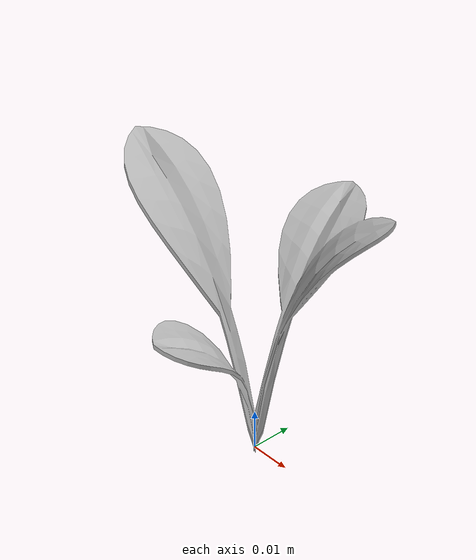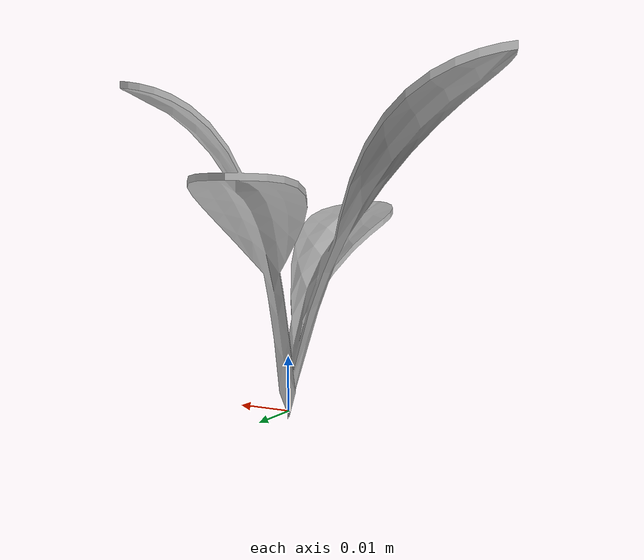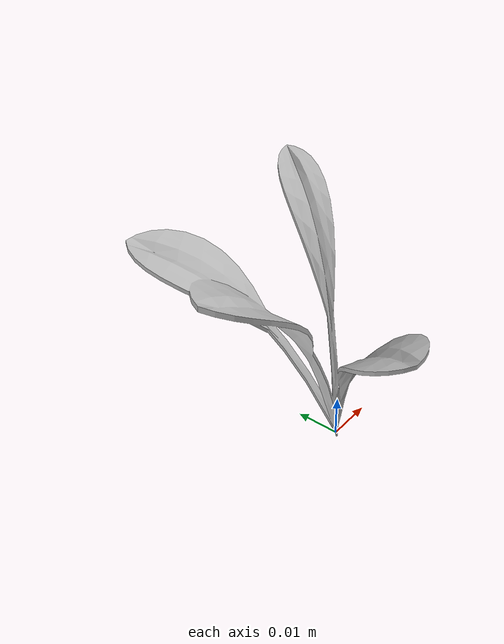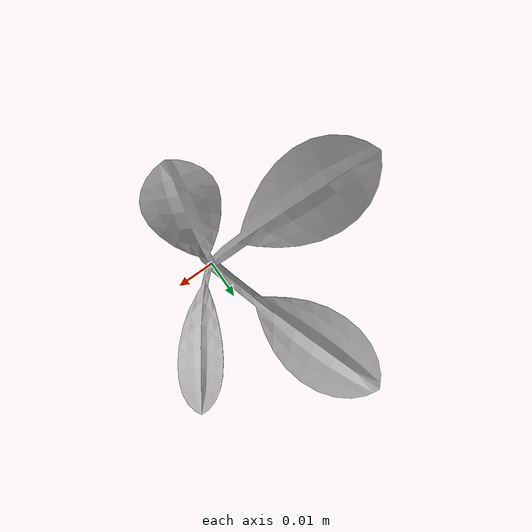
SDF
<sdf version="1.6">
  <model name="sugar_beet_43">
    <static>true</static>
    <link name="body">
      <visual name="visual">
        <geometry>
          <mesh>
            <uri>file:///sugar_beet_43/media/sugar_beet.dae</uri>
          </mesh>
        </geometry>
      </visual>
    </link>
  </model>
</sdf>
